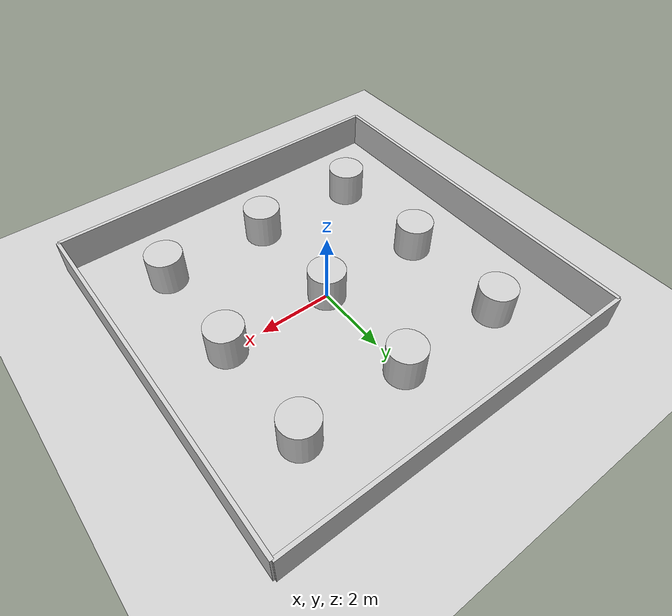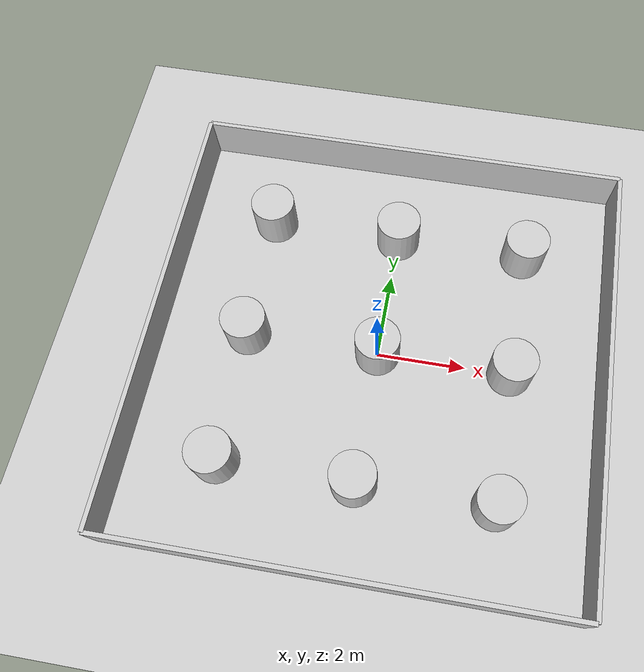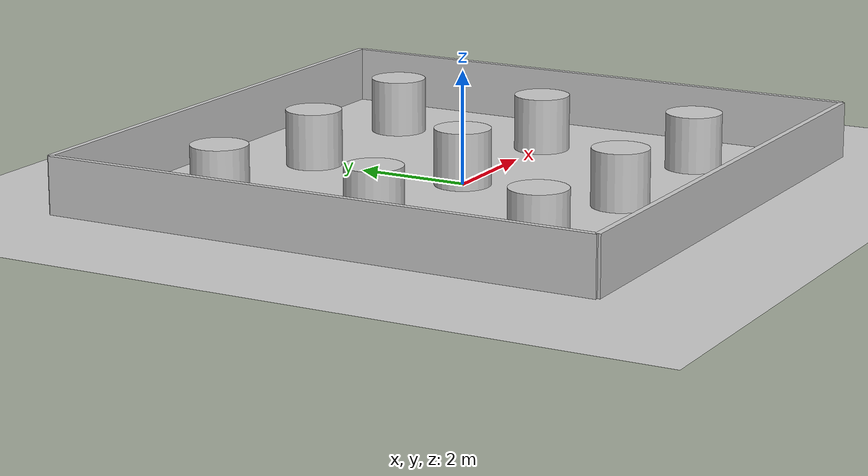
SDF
<?xml version="1.0" ?>
<sdf version="1.8">
    <world name="room">
        <physics name="1ms" type="ignored">
            <max_step_size>0.01</max_step_size>
            <real_time_factor>1.0</real_time_factor>
        </physics>
        <plugin
            filename="gz-sim-physics-system"
            name="gz::sim::systems::Physics">
        </plugin>
        <plugin
            filename="libignition-gazebo-user-commands-system.so"
            name="ignition::gazebo::systems::UserCommands">
        </plugin>
        <plugin
            filename="gz-sim-scene-broadcaster-system"
            name="ignition::gazebo::systems::SceneBroadcaster">
        </plugin>
        <plugin
            filename="gz-sim-sensors-system"
            name="gz::sim::systems::Sensors">
            <render_engine>ogre2</render_engine>
        </plugin>
        <plugin
            filename="gz-sim-contact-system"
            name="gz::sim::systems::Contact">
        </plugin>
        <plugin
            filename="gz-sim-imu-system"
            name="gz::sim::systems::Imu">
        </plugin>

        <light type="directional" name="sun">
            <cast_shadows>true</cast_shadows>
            <pose>0 0 10 0 0 0</pose>
            <diffuse>0.8 0.8 0.8 1</diffuse>
            <specular>0.2 0.2 0.2 1</specular>
            <attenuation>
                <range>1000</range>
                <constant>0.9</constant>
                <linear>0.01</linear>
                <quadratic>0.001</quadratic>
            </attenuation>
            <direction>-0.5 0.1 -0.9</direction>
        </light>

        <model name="ground_plane">
            <static>true</static>
            <link name="link">
                <collision name="collision">
                <geometry>
                    <plane>
                    <normal>0 0 1</normal>
                    <size>10 10</size>
                    </plane>
                </geometry>
                </collision>
                <visual name="visual">
                <geometry>
                    <plane>
                    <normal>0 0 1</normal>
                    <size>10 10</size>
                    </plane>
                </geometry>
                <material>
                    <ambient>0.8 0.8 0.8 1</ambient>
                    <diffuse>0.8 0.8 0.8 1</diffuse>
                    <specular>0.8 0.8 0.8 1</specular>
                </material>
                </visual>
            </link>
        </model>

        <!-- Walls For Room -->
        <model name="wall_1">
            <static>true</static>
            <link name="link">
                <collision name="collision">
                    <geometry>
                        <box>
                            <size>10 0.1 1</size>
                        </box>
                    </geometry>
                </collision>
                <visual name="visual">
                    <geometry>
                        <box>
                            <size>10 0.1 1</size>
                        </box>
                    </geometry>
                    <material>
                        <ambient>0.8 0.8 0.8 1</ambient>
                        <diffuse>0.8 0.8 0.8 1</diffuse>
                        <specular>0.8 0.8 0.8 1</specular>
                    </material>
                </visual>
                <pose>0 5 0.5 0 0 0</pose>
            </link>
        </model>

        <model name="wall_2">
            <static>true</static>
            <link name="link">
                <collision name="collision">
                    <geometry>
                        <box>
                            <size>10 0.1 1</size>
                        </box>
                    </geometry>
                </collision>
                <visual name="visual">
                    <geometry>
                        <box>
                            <size>10 0.1 1</size>
                        </box>
                    </geometry>
                    <material>
                        <ambient>0.8 0.8 0.8 1</ambient>
                        <diffuse>0.8 0.8 0.8 1</diffuse>
                        <specular>0.8 0.8 0.8 1</specular>
                    </material>
                </visual>
                <pose>0 -5 0.5 0 0 0</pose>
            </link>
        </model>

        <model name="wall_3">
            <static>true</static>
            <link name="link">
                <collision name="collision">
                    <geometry>
                        <box>
                            <size>0.1 10 1</size>
                        </box>
                    </geometry>
                </collision>
                <visual name="visual">
                    <geometry>
                        <box>
                            <size>0.1 10 1</size>
                        </box>
                    </geometry>
                    <material>
                        <ambient>0.8 0.8 0.8 1</ambient>
                        <diffuse>0.8 0.8 0.8 1</diffuse>
                        <specular>0.8 0.8 0.8 1</specular>
                    </material>
                </visual>
                <pose>5 0 0.5 0 0 0</pose>
            </link>
        </model>

        <model name="wall_4">
            <static>true</static>
            <link name="link">
                <collision name="collision">
                    <geometry>
                        <box>
                            <size>0.1 10 1</size>
                        </box>
                    </geometry>
                </collision>
                <visual name="visual">
                    <geometry>
                        <box>
                            <size>0.1 10 1</size>
                        </box>
                    </geometry>
                    <material>
                        <ambient>0.8 0.8 0.8 1</ambient>
                        <diffuse>0.8 0.8 0.8 1</diffuse>
                        <specular>0.8 0.8 0.8 1</specular>
                    </material>
                </visual>
                <pose>-5 0 0.5 0 0 0</pose>
            </link>
        </model>

        <!-- Pillars in a 3x3 grid pattern -->
        <model name="pillar_1">
            <static>true</static>
            <link name="link">
                <collision name="collision">
                    <geometry>
                        <cylinder>
                            <radius>0.5</radius>
                            <length>1</length>
                        </cylinder>
                    </geometry>
                </collision>
                <visual name="visual">
                    <geometry>
                        <cylinder>
                            <radius>0.5</radius>
                            <length>1</length>
                        </cylinder>
                    </geometry>
                    <material>
                        <ambient>0.8 0.8 0.8 1</ambient>
                        <diffuse>0.8 0.8 0.8 1</diffuse>
                        <specular>0.8 0.8 0.8 1</specular>
                    </material>
                </visual>
                <pose>-3 -3 0.5 0 0 0</pose>
            </link>
        </model>

        <model name="pillar_2">
            <static>true</static>
            <link name="link">
                <collision name="collision">
                    <geometry>
                        <cylinder>
                            <radius>0.5</radius>
                            <length>1</length>
                        </cylinder>
                    </geometry>
                </collision>
                <visual name="visual">
                    <geometry>
                        <cylinder>
                            <radius>0.5</radius>
                            <length>1</length>
                        </cylinder>
                    </geometry>
                    <material>
                        <ambient>0.8 0.8 0.8 1</ambient>
                        <diffuse>0.8 0.8 0.8 1</diffuse>
                        <specular>0.8 0.8 0.8 1</specular>
                    </material>
                </visual>
                <pose>0 -3 0.5 0 0 0</pose>
            </link>
        </model>

        <model name="pillar_3">
            <static>true</static>
            <link name="link">
                <collision name="collision">
                    <geometry>
                        <cylinder>
                            <radius>0.5</radius>
                            <length>1</length>
                        </cylinder>
                    </geometry>
                </collision>
                <visual name="visual">
                    <geometry>
                        <cylinder>
                            <radius>0.5</radius>
                            <length>1</length>
                        </cylinder>
                    </geometry>
                    <material>
                        <ambient>0.8 0.8 0.8 1</ambient>
                        <diffuse>0.8 0.8 0.8 1</diffuse>
                        <specular>0.8 0.8 0.8 1</specular>
                    </material>
                </visual>
                <pose>3 -3 0.5 0 0 0</pose>
            </link>
        </model>

        <model name="pillar_4">
            <static>true</static>
            <link name="link">
                <collision name="collision">
                    <geometry>
                        <cylinder>
                            <radius>0.5</radius>
                            <length>1</length>
                        </cylinder>
                    </geometry>
                </collision>
                <visual name="visual">
                    <geometry>
                        <cylinder>
                            <radius>0.5</radius>
                            <length>1</length>
                        </cylinder>
                    </geometry>
                    <material>
                        <ambient>0.8 0.8 0.8 1</ambient>
                        <diffuse>0.8 0.8 0.8 1</diffuse>
                        <specular>0.8 0.8 0.8 1</specular>
                    </material>
                </visual>
                <pose>-3 0 0.5 0 0 0</pose>
            </link>
        </model>

        <model name="pillar_5">
            <static>true</static>
            <link name="link">
                <collision name="collision">
                    <geometry>
                        <cylinder>
                            <radius>0.5</radius>
                            <length>1</length>
                        </cylinder>
                    </geometry>
                </collision>
                <visual name="visual">
                    <geometry>
                        <cylinder>
                            <radius>0.5</radius>
                            <length>1</length>
                        </cylinder>
                    </geometry>
                    <material>
                        <ambient>0.8 0.8 0.8 1</ambient>
                        <diffuse>0.8 0.8 0.8 1</diffuse>
                        <specular>0.8 0.8 0.8 1</specular>
                    </material>
                </visual>
                <pose>0 0 0.5 0 0 0</pose>
            </link>
        </model>

        <model name="pillar_6">
            <static>true</static>
            <link name="link">
                <collision name="collision">
                    <geometry>
                        <cylinder>
                            <radius>0.5</radius>
                            <length>1</length>
                        </cylinder>
                    </geometry>
                </collision>
                <visual name="visual">
                    <geometry>
                        <cylinder>
                            <radius>0.5</radius>
                            <length>1</length>
                        </cylinder>
                    </geometry>
                    <material>
                        <ambient>0.8 0.8 0.8 1</ambient>
                        <diffuse>0.8 0.8 0.8 1</diffuse>
                        <specular>0.8 0.8 0.8 1</specular>
                    </material>
                </visual>
                <pose>3 0 0.5 0 0 0</pose>
            </link>
        </model>

        <model name="pillar_7">
            <static>true</static>
            <link name="link">
                <collision name="collision">
                    <geometry>
                        <cylinder>
                            <radius>0.5</radius>
                            <length>1</length>
                        </cylinder>
                    </geometry>
                </collision>
                <visual name="visual">
                    <geometry>
                        <cylinder>
                            <radius>0.5</radius>
                            <length>1</length>
                        </cylinder>
                    </geometry>
                    <material>
                        <ambient>0.8 0.8 0.8 1</ambient>
                        <diffuse>0.8 0.8 0.8 1</diffuse>
                        <specular>0.8 0.8 0.8 1</specular>
                    </material>
                </visual>
                <pose>-3 3 0.5 0 0 0</pose>
            </link>
        </model>

        <model name="pillar_8">
            <static>true</static>
            <link name="link">
                <collision name="collision">
                    <geometry>
                        <cylinder>
                            <radius>0.5</radius>
                            <length>1</length>
                        </cylinder>
                    </geometry>
                </collision>
                <visual name="visual">
                    <geometry>
                        <cylinder>
                            <radius>0.5</radius>
                            <length>1</length>
                        </cylinder>
                    </geometry>
                    <material>
                        <ambient>0.8 0.8 0.8 1</ambient>
                        <diffuse>0.8 0.8 0.8 1</diffuse>
                        <specular>0.8 0.8 0.8 1</specular>
                    </material>
                </visual>
                <pose>0 3 0.5 0 0 0</pose>
            </link>
        </model>

        <model name="pillar_9">
            <static>true</static>
            <link name="link">
                <collision name="collision">
                    <geometry>
                        <cylinder>
                            <radius>0.5</radius>
                            <length>1</length>
                        </cylinder>
                    </geometry>
                </collision>
                <visual name="visual">
                    <geometry>
                        <cylinder>
                            <radius>0.5</radius>
                            <length>1</length>
                        </cylinder>
                    </geometry>
                    <material>
                        <ambient>0.8 0.8 0.8 1</ambient>
                        <diffuse>0.8 0.8 0.8 1</diffuse>
                        <specular>0.8 0.8 0.8 1</specular>
                    </material>
                </visual>
                <pose>3 3 0.5 0 0 0</pose>
            </link>
        </model>

    </world>
</sdf>
